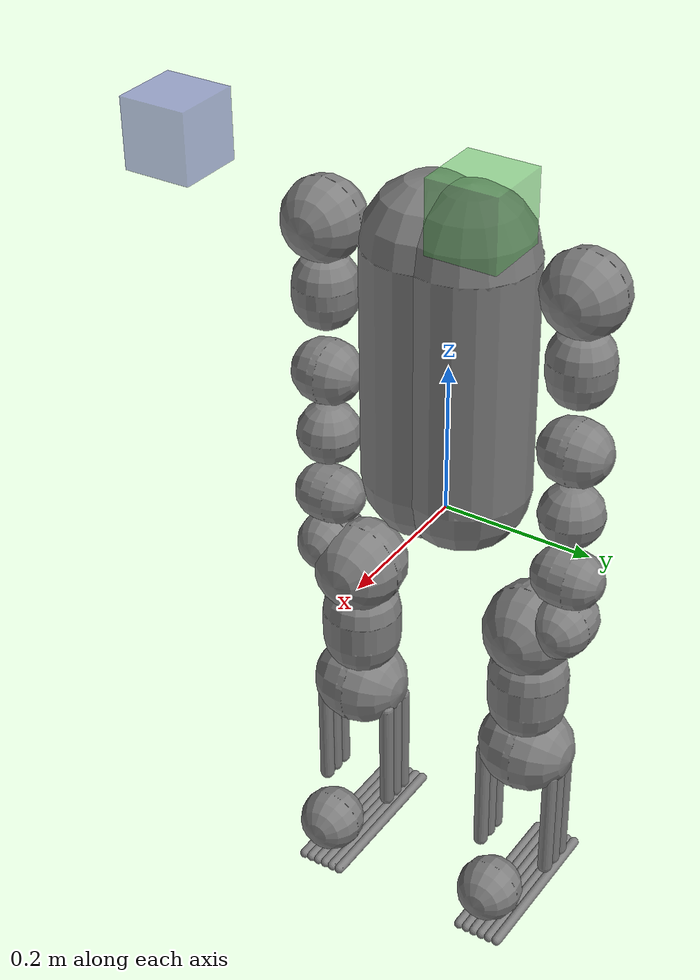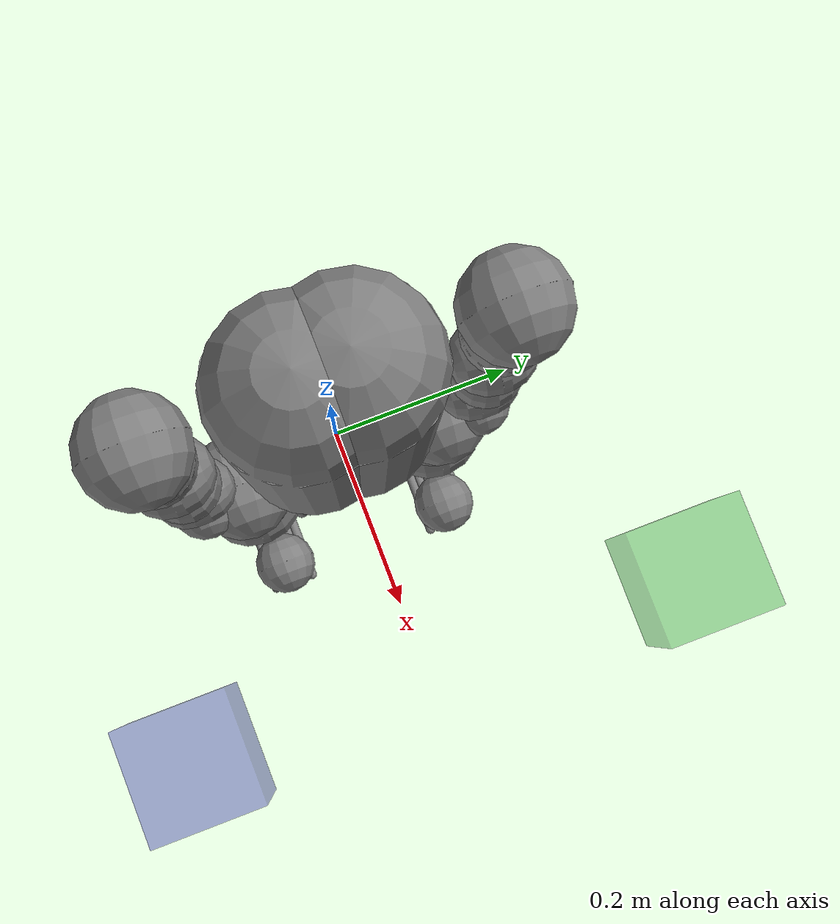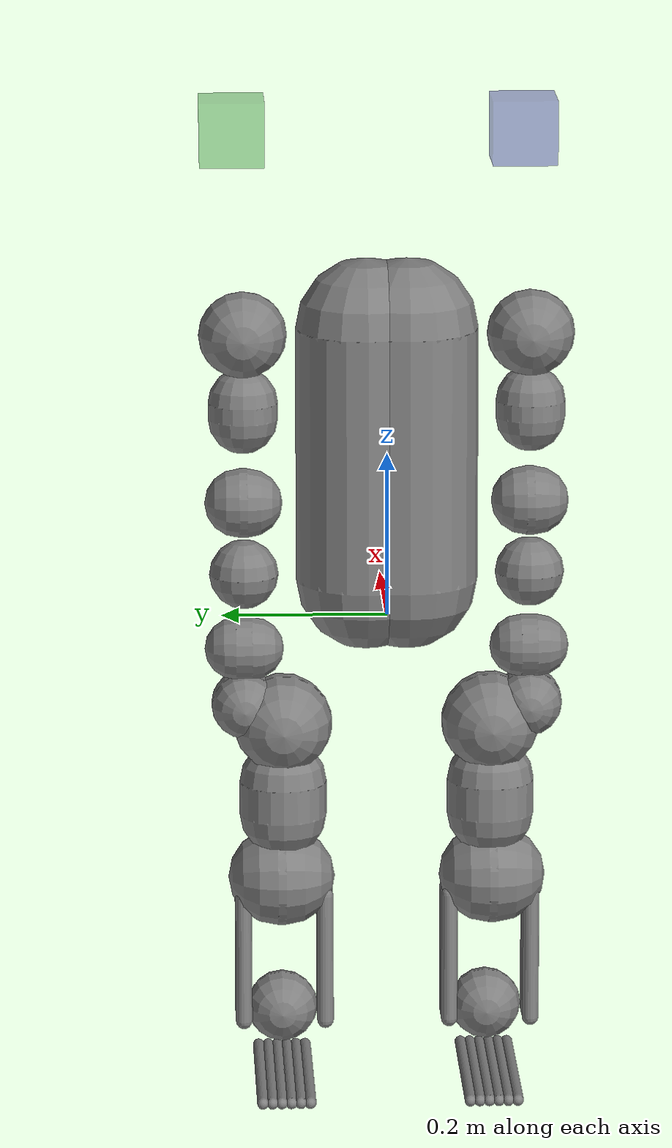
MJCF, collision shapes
<mujoco model="duke_v2 mink scene">
  <include file="humanoid_v21.xml"/>

  <statistic center="0.2 0 0.8" extent="1.2" meansize="0.08"/>

  <visual>
    <headlight diffuse="0.6 0.6 0.6" ambient="0.1 0.1 0.1" specular="0 0 0"/>
    <global azimuth="160" elevation="-20"/>
  </visual>

  <asset>
    <texture name="grid" type="2d" builtin="checker" rgb1=".2 .3 .4" rgb2=".1 0.15 0.2"
      width="512" height="512" mark="cross" markrgb=".8 .8 .8"/>
    <material name="grid" texture="grid" texrepeat="1 1" texuniform="true"/>
  </asset>

  <worldbody>
    <light pos="0 0 4" directional="true"/>

    <!-- Left EE target: green box. Double-click to select, Ctrl+Right-drag to translate -->
    <body name="left_target" pos="0.25 0.18 0.55" mocap="true">
      <geom type="box" size=".04 .04 .04" contype="0" conaffinity="0" rgba=".3 .7 .3 .5"/>
    </body>

    <!-- Right EE target: blue box -->
    <body name="right_target" pos="0.25 -0.18 0.55" mocap="true">
      <geom type="box" size=".04 .04 .04" contype="0" conaffinity="0" rgba=".3 .3 .7 .5"/>
    </body>
  </worldbody>
</mujoco>

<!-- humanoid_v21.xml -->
<mujoco model="humanoid_v2">
  <compiler angle="radian" meshdir="meshes" autolimits="true"/>
  <default>
    <default class="humanoid_v2">
      <default class="visual">
        <geom group="2" type="mesh" contype="0" conaffinity="0" material="silver"/>
      </default>
      <default class="collision">
        <geom group="3" contype="1" conaffinity="1"/>
      </default>
    </default>
  </default>
  <asset>
    <material name="silver" rgba="0.75 0.75 0.75 1"/>
    <material name="blue" rgba="0 0 0.8 1"/>
    <material name="black" rgba="0 0 0 1"/>
    <material name="purple" rgba="0.8 0 0.8 1"/>
    <material name="white" rgba="1 1 1 1"/>
    <material name="light_grey" rgba="0.19 0.2 0.22 1" specular="0.75" shininess="0.05"/>
    <material name="dark_grey" rgba="0.11 0.115 0.125 1" specular="0.35" shininess="0.05"/>
    <mesh name="base_link" file="base_link.stl" scale="0.001 0.001 0.001"/>
    <mesh name="waist_high_res" file="waist.obj" scale="0.001 0.001 0.001"/>
    <mesh name="hip_2_high_res_mirrorx" file="hip_2.obj" scale="-0.001 0.001 0.001"/>
    <mesh name="hip_2_high_res" file="hip_2.obj" scale="0.001 0.001 0.001"/>
    <mesh name="hip_3_high_res_mirrorx" file="hip_3.obj" scale="-0.001 0.001 0.001"/>
    <mesh name="hip_3_high_res" file="hip_3.obj" scale="0.001 0.001 0.001"/>
    <mesh name="knee_high_res_mirrorx" file="knee.obj" scale="-0.001 0.001 0.001"/>
    <mesh name="knee_high_res" file="knee.obj" scale="0.001 0.001 0.001"/>
    <mesh name="shank_high_res_mirrorx" file="shank.obj" scale="-0.001 0.001 0.001"/>
    <mesh name="shank_high_res" file="shank.obj" scale="0.001 0.001 0.001"/>
    <mesh name="ankle_1_high_res_mirrorx" file="ankle_1.obj" scale="-0.001 0.001 0.001"/>
    <mesh name="ankle_1_high_res" file="ankle_1.obj" scale="0.001 0.001 0.001"/>
    <mesh name="ankle_2_high_res_mirrorx" file="ankle_2.obj" scale="-0.001 0.001 0.001"/>
    <mesh name="ankle_2_high_res" file="ankle_2.obj" scale="0.001 0.001 0.001"/>
    <mesh name="shoulder_2_high_res_mirrorx" file="shoulder_2.obj" scale="-0.001 0.001 0.001"/>
    <mesh name="shoulder_2_high_res" file="shoulder_2.obj" scale="0.001 0.001 0.001"/>
    <mesh name="shoulder_3_high_res_mirrorx" file="shoulder_3.obj" scale="-0.001 0.001 0.001"/>
    <mesh name="shoulder_3_high_res" file="shoulder_3.obj" scale="0.001 0.001 0.001"/>
    <mesh name="elbow_high_res_mirrorx" file="elbow.obj" scale="-0.001 0.001 0.001"/>
    <mesh name="elbow_high_res" file="elbow.obj" scale="0.001 0.001 0.001"/>
    <mesh name="wrist_1_high_res_mirrorx" file="wrist_1.obj" scale="-0.001 0.001 0.001"/>
    <mesh name="wrist_1_high_res" file="wrist_1.obj" scale="0.001 0.001 0.001"/>
    <mesh name="wrist_2_high_res_mirrorx" file="wrist_2.obj" scale="-0.001 0.001 0.001"/>
    <mesh name="wrist_2_high_res" file="wrist_2.obj" scale="0.001 0.001 0.001"/>
    <mesh name="wrist_3_new_high_res_mirrorx" file="wrist_3_new.obj" scale="-0.001 0.001 0.001"/>
    <mesh name="wrist_3_new_high_res" file="wrist_3_new.obj" scale="0.001 0.001 0.001"/>
    <mesh name="end_effector_attachment_new_high_res_mirrorx" file="end_effector_attachment_new.obj" scale="-0.001 0.001 0.001"/>
    <mesh name="end_effector_attachment_new_high_res" file="end_effector_attachment_new.obj" scale="0.001 0.001 0.001"/>
  </asset>
  <worldbody>
    <body name="base_link" childclass="humanoid_v2">
      <light pos="0 0 2" mode="trackcom"/>
      <camera name="tracking" pos="1.5 -1.5 1" xyaxes="0.707 0.707 0 -0.3 0.3 0.9" mode="trackcom"/>
      <freejoint name="floating_base_joint"/>
      <inertial mass="9.302908449" pos="-0.00741636 4.16161e-05 0.186843" diaginertia="0.0347794 0.173949 0.189052" quat="8.35609e-05 0.718034 -0.000326247 0.696008"/>
      <geom name="base_link_visual" type="mesh" mesh="base_link" pos="0 0 0" class="visual" material="dark_grey"/>
      <geom type="capsule" size="0.08485378049544526 0.15514621950455473" name="base_link_collision0" pos="0 -0.0249986 0.2" class="collision"/>
      <geom type="capsule" size="0.08485378049544526 0.15514621950455473" name="base_link_collision1" pos="0 0.0249986 0.2" class="collision"/>
      <body name="waist" pos="0 0 -0.0361">
        <inertial mass="2.319367147" pos="-0.00238207 4.63475e-07 -0.0704721" diaginertia="0.00376271 0.00529885 0.00558094" quat="-0.43413 0.558388 0.558062 -0.433936"/>
        <joint name="waist_joint" type="hinge" pos="0 0 0" axis="0 0 1" range="-1.5707963267948966 1.5707963267948966"/>
        <geom name="waist_visual" type="mesh" mesh="waist_high_res" pos="0 0 0" class="visual" material="dark_grey"/>
        <body name="hip_2_L" pos="0 0.059946 -0.081628" quat="0.793353 0.608761 0 0">
          <inertial mass="1.252698981" pos="0.000349087 2.18694e-05 -0.061261" diaginertia="0.00138225 0.00185815 0.00192888" quat="0.536837 0.540342 0.45664 -0.459691"/>
          <joint name="left_hip_1_joint" type="hinge" pos="0 0 0" axis="0 0 1" range="-1.8325957145940461 1.8325957145940461"/>
          <geom name="hip_2_L_visual" type="mesh" mesh="hip_2_high_res_mirrorx" pos="0 0 0" quat="6.12323e-17 0 0 1" class="visual" material="light_grey"/>
          <geom name="hip_2_L_collision" type="capsule" size="0.06 0.005" pos="0.0006 0 -0.069" quat="0.092296 0.701057 -0.092296 -0.701057" class="collision"/>
          <body name="hip_3_L" pos="0.0287 0 -0.0691" quat="0.701057 0.092296 -0.701057 -0.092296">
            <inertial mass="1.297335685" pos="-2.07731e-05 -0.0770614 0.0307231" diaginertia="0.00175068 0.00229469 0.00271565" quat="0.51929 -0.479853 -0.519071 0.480255"/>
            <joint name="left_hip_2_joint" type="hinge" pos="0 0 0" axis="0 0 1" range="-1.8325957145940461 0.5235987755982988"/>
            <geom name="hip_3_L_visual" type="mesh" mesh="hip_3_high_res_mirrorx" pos="0 0 0" class="visual" material="dark_grey"/>
            <geom name="hip_3_L_collision" type="capsule" size="0.053 0.021" pos="0 -0.0945 0.0287" quat="0.707107 -0.707107 -0 0" class="collision"/>
            <body name="knee_L" pos="0 -0.1156 0.0287" quat="0.707107 -0.707107 0 0">
              <inertial mass="1.842141671" pos="0.0014826 -8.41853e-05 -0.0736603" diaginertia="0.00190901 0.00264702 0.00341994" quat="-0.00022525 0.722024 0.00337258 -0.69186"/>
              <joint name="left_hip_3_joint" type="hinge" pos="0 0 0" axis="0 0 1" range="-1.5707963267948966 1.5707963267948966"/>
              <geom name="knee_L_visual" type="mesh" mesh="knee_high_res_mirrorx" pos="0 0 0" quat="6.12323e-17 0 0 1" class="visual" material="light_grey"/>
              <geom name="knee_L_collision" type="capsule" size="0.06 0.005" pos="-0.00225 0 -0.0795" quat="0.5 -0.5 -0.5 0.5" class="collision"/>
              <body name="shank_L" pos="0.0255 0 -0.0795" quat="0.5 -0.5 -0.5 0.5">
                <inertial mass="0.753288544" pos="-8.59033e-07 0.0943751 0.0229906" diaginertia="0.00154563 0.00486086 0.00599117" quat="0.498696 0.501311 -0.498686 -0.5013"/>
                <joint name="left_knee_joint" type="hinge" pos="0 0 0" axis="0 0 1" range="-2.2689280275926285 2.2689280275926285"/>
                <geom name="shank_L_visual" type="mesh" mesh="shank_high_res_mirrorx" pos="0 0 0" class="visual" material="dark_grey"/>
                <geom type="capsule" size="0.01 0.08" name="shank_L_collision0" pos="-0.02 0.1 -0.025" quat="0.707107 -0.707107 -0 0" class="collision"/>
                <geom type="capsule" size="0.01 0.08" name="shank_L_collision1" pos="0 0.1 -0.025" quat="0.707107 -0.707107 -0 0" class="collision"/>
                <geom type="capsule" size="0.01 0.08" name="shank_L_collision2" pos="0.02 0.1 -0.025" quat="0.707107 -0.707107 -0 0" class="collision"/>
                <geom type="capsule" size="0.01 0.08" name="shank_L_collision3" pos="-0.02 0.1 0.075" quat="0.707107 -0.707107 -0 0" class="collision"/>
                <geom type="capsule" size="0.01 0.08" name="shank_L_collision4" pos="0 0.1 0.075" quat="0.707107 -0.707107 -0 0" class="collision"/>
                <geom type="capsule" size="0.01 0.08" name="shank_L_collision5" pos="0.02 0.1 0.075" quat="0.707107 -0.707107 -0 0" class="collision"/>
                <body name="ankle_1_L" pos="0 0.195 0" quat="6.12323e-17 0 1 0">
                  <inertial mass="1.801864964" pos="-0.0305888 1.59279e-05 -0.025774" diaginertia="0.00144542 0.00421361 0.00443807" quat="0.00120435 0.999999 0.000123663 -0.000389805"/>
                  <joint name="left_ankle_1_joint" type="hinge" pos="0 0 0" axis="0 0 1" range="-0.8726646259971648 0.8726646259971648"/>
                  <geom name="ankle_1_L_visual" type="mesh" mesh="ankle_1_high_res_mirrorx" pos="0 0 0" quat="6.12323e-17 0 0 1" class="visual" material="light_grey"/>
                  <geom name="ankle_1_L_collision" type="capsule" size="0.044 0.0005" pos="-0.08275 0 -0.0255" quat="4.32978e-17 -0.707107 -4.32978e-17 -0.707107" class="collision"/>
                  <body name="foot_L" pos="-0.1 0 -0.0255" quat="0.5 -0.5 0.5 -0.5">
                    <inertial mass="0.506070711" pos="-0.0374774 -8.96073e-10 0.0957522" diaginertia="0.00061045 0.00341987 0.00361595" quat="0.489663 0.489663 -0.510128 0.510128"/>
                    <joint name="left_ankle_2_joint" type="hinge" pos="0 0 0" axis="0 0 1" range="-1.0471975511965976 1.0471975511965976"/>
                    <geom name="foot_L_visual" type="mesh" mesh="ankle_2_high_res_mirrorx" pos="0 0 0" quat="6.12323e-17 0 0 1" class="visual" material="dark_grey"/>
                    <geom type="capsule" size="0.007 0.11049999999999999" name="foot_L_collision0" pos="-0.061 0.029 0.1" quat="6.12323e-17 0 0 1" class="collision"/>
                    <geom type="capsule" size="0.007 0.11049999999999999" name="foot_L_collision1" pos="-0.061 0.0174 0.1" quat="6.12323e-17 0 0 1" class="collision"/>
                    <geom type="capsule" size="0.007 0.11049999999999999" name="foot_L_collision2" pos="-0.061 0.0058 0.1" quat="6.12323e-17 0 0 1" class="collision"/>
                    <geom type="capsule" size="0.007 0.11049999999999999" name="foot_L_collision3" pos="-0.061 -0.0058 0.1" quat="6.12323e-17 0 0 1" class="collision"/>
                    <geom type="capsule" size="0.007 0.11049999999999999" name="foot_L_collision4" pos="-0.061 -0.0174 0.1" quat="6.12323e-17 0 0 1" class="collision"/>
                    <geom type="capsule" size="0.007 0.11049999999999999" name="foot_L_collision5" pos="-0.061 -0.029 0.1" quat="6.12323e-17 0 0 1" class="collision"/>
                    <site name="foot_L_contact" pos="-0.061 -5.78241e-19 0.1"/>
                  </body>
                </body>
              </body>
            </body>
          </body>
        </body>
        <body name="hip_2_R" pos="0 -0.059946 -0.081628" quat="0.793353 -0.608761 0 0">
          <inertial mass="1.252698981" pos="0.000349087 -2.18694e-05 -0.061261" diaginertia="0.00138225 0.00185815 0.00192888" quat="-0.459691 0.45664 0.540342 0.536837"/>
          <joint name="right_hip_1_joint" type="hinge" pos="0 0 0" axis="0 0 1" range="-1.8325957145940461 1.8325957145940461"/>
          <geom name="hip_2_R_visual" type="mesh" mesh="hip_2_high_res" pos="0 0 0" class="visual" material="light_grey"/>
          <geom name="hip_2_R_collision" type="capsule" size="0.06 0.005" pos="0.0006 0 -0.069" quat="0.701057 0.092296 -0.701057 -0.092296" class="collision"/>
          <body name="hip_3_R" pos="0.0287 0 -0.0691" quat="0.092296 0.701057 -0.092296 -0.701057">
            <inertial mass="1.297335685" pos="2.07731e-05 -0.0770614 0.0307231" diaginertia="0.00175068 0.00229469 0.00271565" quat="0.519071 -0.480255 -0.51929 0.479853"/>
            <joint name="right_hip_2_joint" type="hinge" pos="0 0 0" axis="0 0 1" range="-0.5235987755982988 1.8325957145940461"/>
            <geom name="hip_3_R_visual" type="mesh" mesh="hip_3_high_res" pos="0 0 0" class="visual" material="dark_grey"/>
            <geom name="hip_3_R_collision" type="capsule" size="0.053 0.021" pos="0 -0.0945 0.0287" quat="0.707107 -0.707107 0 0" class="collision"/>
            <body name="knee_R" pos="0 -0.1156 0.0287" quat="4.32978e-17 -4.32978e-17 0.707107 0.707107">
              <inertial mass="1.842141671" pos="0.0014826 8.41853e-05 -0.0736603" diaginertia="0.00190901 0.00264702 0.00341994" quat="0.69186 -0.00337258 -0.722024 0.00022525"/>
              <joint name="right_hip_3_joint" type="hinge" pos="0 0 0" axis="0 0 1" range="-1.5707963267948966 1.5707963267948966"/>
              <geom name="knee_R_visual" type="mesh" mesh="knee_high_res" pos="0 0 0" class="visual" material="light_grey"/>
              <geom name="knee_R_collision" type="capsule" size="0.06 0.005" pos="-0.00225 0 -0.0795" quat="0.5 -0.5 -0.5 0.5" class="collision"/>
              <body name="shank_R" pos="0.0255 0 -0.0795" quat="0.5 -0.5 -0.5 0.5">
                <inertial mass="0.753288544" pos="8.59033e-07 0.0943751 0.0229906" diaginertia="0.00154563 0.00486086 0.00599117" quat="-0.498686 -0.5013 0.498696 0.501311"/>
                <joint name="right_knee_joint" type="hinge" pos="0 0 0" axis="0 0 1" range="-2.2689280275926285 2.2689280275926285"/>
                <geom name="shank_R_visual" type="mesh" mesh="shank_high_res" pos="0 0 0" class="visual" material="dark_grey"/>
                <geom type="capsule" size="0.01 0.08" name="shank_R_collision0" pos="-0.02 0.1 -0.025" quat="0.707107 -0.707107 -0 0" class="collision"/>
                <geom type="capsule" size="0.01 0.08" name="shank_R_collision1" pos="0 0.1 -0.025" quat="0.707107 -0.707107 -0 0" class="collision"/>
                <geom type="capsule" size="0.01 0.08" name="shank_R_collision2" pos="0.02 0.1 -0.025" quat="0.707107 -0.707107 -0 0" class="collision"/>
                <geom type="capsule" size="0.01 0.08" name="shank_R_collision3" pos="-0.02 0.1 0.075" quat="0.707107 -0.707107 -0 0" class="collision"/>
                <geom type="capsule" size="0.01 0.08" name="shank_R_collision4" pos="0 0.1 0.075" quat="0.707107 -0.707107 -0 0" class="collision"/>
                <geom type="capsule" size="0.01 0.08" name="shank_R_collision5" pos="0.02 0.1 0.075" quat="0.707107 -0.707107 -0 0" class="collision"/>
                <body name="ankle_1_R" pos="0 0.195 0" quat="3.7494e-33 -1 6.12323e-17 6.12323e-17">
                  <inertial mass="1.801864964" pos="-0.0305888 -1.59279e-05 -0.025774" diaginertia="0.00144542 0.00421361 0.00443807" quat="0.999999 0.00120435 0.000389805 -0.000123663"/>
                  <joint name="right_ankle_1_joint" type="hinge" pos="0 0 0" axis="0 0 1" range="-0.8726646259971648 0.8726646259971648"/>
                  <geom name="ankle_1_R_visual" type="mesh" mesh="ankle_1_high_res" pos="0 0 0" class="visual" material="light_grey"/>
                  <geom name="ankle_1_R_collision" type="capsule" size="0.044 0.0005" pos="-0.08275 0 -0.0255" quat="0.707107 0 0.707107 0" class="collision"/>
                  <body name="foot_R" pos="-0.1 0 -0.0255" quat="0.5 0.5 0.5 0.5">
                    <inertial mass="0.506070711" pos="-0.0374774 8.96073e-10 0.0957522" diaginertia="0.00061045 0.00341987 0.00361595" quat="0.489663 0.489663 -0.510128 0.510128"/>
                    <joint name="right_ankle_2_joint" type="hinge" pos="0 0 0" axis="0 0 1" range="-1.0471975511965976 1.0471975511965976"/>
                    <geom name="foot_R_visual" type="mesh" mesh="ankle_2_high_res" pos="0 0 0" class="visual" material="dark_grey"/>
                    <geom type="capsule" size="0.007 0.11049999999999999" name="foot_R_collision0" pos="-0.061 -0.029 0.1" class="collision"/>
                    <geom type="capsule" size="0.007 0.11049999999999999" name="foot_R_collision1" pos="-0.061 -0.0174 0.1" class="collision"/>
                    <geom type="capsule" size="0.007 0.11049999999999999" name="foot_R_collision2" pos="-0.061 -0.0058 0.1" class="collision"/>
                    <geom type="capsule" size="0.007 0.11049999999999999" name="foot_R_collision3" pos="-0.061 0.0058 0.1" class="collision"/>
                    <geom type="capsule" size="0.007 0.11049999999999999" name="foot_R_collision4" pos="-0.061 0.0174 0.1" class="collision"/>
                    <geom type="capsule" size="0.007 0.11049999999999999" name="foot_R_collision5" pos="-0.061 0.029 0.1" class="collision"/>
                    <site name="foot_R_contact" pos="-0.061 5.78241e-19 0.1"/>
                  </body>
                </body>
              </body>
            </body>
          </body>
        </body>
      </body>
      <body name="shoulder_2_L" pos="0 0.083 0.3475" quat="0.707107 0.707107 0 0">
        <inertial mass="0.903096525" pos="0.000787068 5.71455e-07 -0.0730081" diaginertia="0.000555624 0.00146696 0.00153275" quat="-4.15531e-05 0.677536 2.98517e-05 0.73549"/>
        <joint name="left_shoulder_1_joint" type="hinge" pos="0 0 0" axis="0 0 1" range="-3.141592653589793 3.141592653589793"/>
        <geom name="shoulder_2_L_visual" type="mesh" mesh="shoulder_2_high_res_mirrorx" pos="0 0 0" quat="6.12323e-17 0 0 1" class="visual" material="dark_grey"/>
        <geom name="shoulder_2_L_collision" type="capsule" size="0.053 5e-05" pos="0 0 -0.09" quat="4.32978e-17 -0.707107 -4.32978e-17 -0.707107" class="collision"/>
        <body name="shoulder_3_L" pos="0.02475 0 -0.09" quat="0.707107 0 -0.707107 0">
          <inertial mass="0.716054399" pos="-0.000428244 -0.0657202 0.0269038" diaginertia="0.000675965 0.00100372 0.00122933" quat="-0.493187 0.508665 0.504716 -0.493242"/>
          <joint name="left_shoulder_2_joint" type="hinge" pos="0 0 0" axis="0 0 1" range="-3.141592653589793 0.5235987755982988"/>
          <geom name="shoulder_3_L_visual" type="mesh" mesh="shoulder_3_high_res_mirrorx" pos="0 0 0" class="visual" material="light_grey"/>
          <geom name="shoulder_3_L_collision" type="capsule" size="0.042 0.01" pos="0 -0.093 0.02475" quat="0.707107 0.707107 0 0" class="collision"/>
          <body name="elbow_L" pos="0 -0.096 0.02475" quat="4.32978e-17 -4.32978e-17 0.707107 0.707107">
            <inertial mass="0.649565012" pos="0.00165016 -0.0024442 -0.0943709" diaginertia="0.000376826 0.000924704 0.00107426" quat="0.734796 0.086108 0.672778 -0.00554098"/>
            <joint name="left_shoulder_3_joint" type="hinge" pos="0 0 0" axis="0 0 1" range="-3.141592653589793 3.141592653589793"/>
            <geom name="elbow_L_visual" type="mesh" mesh="elbow_high_res_mirrorx" pos="0 0 0" quat="6.12323e-17 0 0 1" class="visual" material="dark_grey"/>
            <geom name="elbow_L_collision" type="capsule" size="0.042 0.005" pos="0 0 -0.111" quat="4.32978e-17 -0.707107 -4.32978e-17 -0.707107" class="collision"/>
            <body name="wrist_1_L" pos="0 0 -0.111" quat="0.5 0.5 -0.5 -0.5">
              <inertial mass="0.745373662" pos="0.000186448 -0.0651533 0.00301697" diaginertia="0.000704132 0.00105686 0.00129828" quat="0.458603 0.539817 -0.475968 -0.521282"/>
              <joint name="left_elbow_joint" type="hinge" pos="0 0 0" axis="0 0 1" range="-2.181661564992912 2.181661564992912"/>
              <geom name="wrist_1_L_visual" type="mesh" mesh="wrist_1_high_res_mirrorx" pos="0 0 0" class="visual" material="light_grey"/>
              <geom name="wrist_1_L_collision" type="capsule" size="0.042 5e-05" pos="0 -0.0885 0" quat="0.707107 0.707107 0 0" class="collision"/>
              <body name="wrist_2_L" pos="0 -0.096 0" quat="0.5 -0.5 -0.5 -0.5">
                <inertial mass="0.446371412" pos="-0.00845747 2.17826e-05 -0.0781628" diaginertia="0.000202786 0.000381248 0.000403138" quat="0.475646 0.475072 0.524297 -0.522667"/>
                <joint name="left_wrist_1_joint" type="hinge" pos="0 0 0" axis="0 0 1" range="-3.141592653589793 3.141592653589793"/>
                <geom name="wrist_2_L_visual" type="mesh" mesh="wrist_2_high_res_mirrorx" pos="0 0 0" quat="6.12323e-17 0 0 1" class="visual" material="dark_grey"/>
                <geom name="wrist_2_L_collision" type="capsule" size="0.038 0.01" pos="0 0 -0.0855" quat="4.32978e-17 -0.707107 -4.32978e-17 -0.707107" class="collision"/>
                <body name="wrist_3_L" pos="0 0 -0.0855" quat="6.12323e-17 0 0 1">
                  <inertial mass="0.352354158" pos="-0.00698731 -0.00907562 -0.0474171" diaginertia="0.000125529 0.000440978 0.000444273" quat="0.817224 -0.0872787 0.56821 -0.0408068"/>
                  <joint name="left_wrist_2_joint" type="hinge" pos="0 0 0" axis="-1 0 0" range="-1.6057029118347832 1.6057029118347832"/>
                  <geom name="wrist_3_L_visual" type="mesh" mesh="wrist_3_new_high_res_mirrorx" pos="0 0 0" class="visual" material="light_grey"/>
                  <geom name="wrist_3_L_collision" type="capsule" size="0.04 0.01" pos="0 0 -0.07" quat="0.707107 0.707107 0 0" class="collision"/>
                  <body name="end_effector_L" pos="0 0 -0.064" quat="0.5 0.5 0.5 -0.5">
                    <inertial mass="0.17299" pos="0.01513 2.418e-08 -0.01529" diaginertia="5.85506e-05 0.00014 0.000145109" quat="0.992481 -3.04069e-06 -0.122399 3.74997e-07"/>
                    <joint name="left_wrist_3_joint" type="hinge" pos="0 0 0" axis="0 0 1" range="-1.5707963267948966 1.5707963267948966"/>
                    <geom name="end_effector_L_visual" type="mesh" mesh="end_effector_attachment_new_high_res_mirrorx" pos="0 0 0" quat="6.12323e-17 0 0 1" class="visual" material="dark_grey"/>
                    <site name="end_effector_L_site" pos="0.0325 0 0"/>
                  </body>
                </body>
              </body>
            </body>
          </body>
        </body>
      </body>
      <body name="shoulder_2_R" pos="0 -0.083 0.3475" quat="0.707107 -0.707107 0 0">
        <inertial mass="0.903096525" pos="0.000787068 -5.71455e-07 -0.0730081" diaginertia="0.000555624 0.00146696 0.00153275" quat="0.677536 -4.15531e-05 -0.73549 -2.98517e-05"/>
        <joint name="right_shoulder_1_joint" type="hinge" pos="0 0 0" axis="0 0 1" range="-3.141592653589793 3.141592653589793"/>
        <geom name="shoulder_2_R_visual" type="mesh" mesh="shoulder_2_high_res" pos="0 0 0" class="visual" material="dark_grey"/>
        <geom name="shoulder_2_R_collision" type="capsule" size="0.053 5e-05" pos="0 0 -0.09" quat="0.707107 0 0.707107 0" class="collision"/>
        <body name="shoulder_3_R" pos="0.02475 0 -0.09" quat="4.32978e-17 0.707107 4.32978e-17 -0.707107">
          <inertial mass="0.716054399" pos="0.000428244 -0.0657202 0.0269038" diaginertia="0.000675965 0.00100372 0.00122933" quat="0.504716 -0.493242 -0.493187 0.508665"/>
          <joint name="right_shoulder_2_joint" type="hinge" pos="0 0 0" axis="0 0 1" range="-0.5235987755982988 3.141592653589793"/>
          <geom name="shoulder_3_R_visual" type="mesh" mesh="shoulder_3_high_res" pos="0 0 0" class="visual" material="light_grey"/>
          <geom name="shoulder_3_R_collision" type="capsule" size="0.042 0.01" pos="0 -0.093 0.02475" quat="0.707107 0.707107 0 0" class="collision"/>
          <body name="elbow_R" pos="0 -0.096 0.02475" quat="0.707107 -0.707107 0 0">
            <inertial mass="0.649565012" pos="0.00165016 0.0024442 -0.0943709" diaginertia="0.000376826 0.000924704 0.00107426" quat="0.086108 0.734796 0.00554098 -0.672778"/>
            <joint name="right_shoulder_3_joint" type="hinge" pos="0 0 0" axis="0 0 1" range="-3.141592653589793 3.141592653589793"/>
            <geom name="elbow_R_visual" type="mesh" mesh="elbow_high_res" pos="0 0 0" class="visual" material="dark_grey"/>
            <geom name="elbow_R_collision" type="capsule" size="0.042 0.005" pos="0 0 -0.111" quat="0.707107 0 0.707107 0" class="collision"/>
            <body name="wrist_1_R" pos="0 0 -0.111" quat="0.5 0.5 -0.5 -0.5">
              <inertial mass="0.745373662" pos="-0.000186448 -0.0651533 0.00301697" diaginertia="0.000704132 0.00105686 0.00129828" quat="-0.475968 -0.521282 0.458603 0.539817"/>
              <joint name="right_elbow_joint" type="hinge" pos="0 0 0" axis="0 0 1" range="-2.181661564992912 2.181661564992912"/>
              <geom name="wrist_1_R_visual" type="mesh" mesh="wrist_1_high_res" pos="0 0 0" class="visual" material="light_grey"/>
              <geom name="wrist_1_R_collision" type="capsule" size="0.042 5e-05" pos="0 -0.0885 0" quat="0.707107 0.707107 0 0" class="collision"/>
              <body name="wrist_2_R" pos="0 -0.096 0" quat="0.5 -0.5 -0.5 -0.5">
                <inertial mass="0.446371412" pos="-0.00845747 -2.17826e-05 -0.0781628" diaginertia="0.000202786 0.000381248 0.000403138" quat="0.522667 -0.524297 -0.475072 -0.475646"/>
                <joint name="right_wrist_1_joint" type="hinge" pos="0 0 0" axis="0 0 1" range="-3.141592653589793 3.141592653589793"/>
                <geom name="wrist_2_R_visual" type="mesh" mesh="wrist_2_high_res" pos="0 0 0" class="visual" material="dark_grey"/>
                <geom name="wrist_2_R_collision" type="capsule" size="0.038 0.01" pos="0 0 -0.0855" quat="0.707107 0 0.707107 0" class="collision"/>
                <body name="wrist_3_R" pos="0 0 -0.0855">
                  <inertial mass="0.352354158" pos="0.00698731 -0.00907562 -0.0474171" diaginertia="0.000125529 0.000440978 0.000444273" quat="0.56821 -0.0408068 0.817224 -0.0872787"/>
                  <joint name="right_wrist_2_joint" type="hinge" pos="0 0 0" axis="-1 0 0" range="-1.6057029118347832 1.6057029118347832"/>
                  <geom name="wrist_3_R_visual" type="mesh" mesh="wrist_3_new_high_res" pos="0 0 0" class="visual" material="light_grey"/>
                  <geom name="wrist_3_R_collision" type="capsule" size="0.04 0.01" pos="0 0 -0.07" quat="0.707107 0.707107 0 0" class="collision"/>
                  <body name="end_effector_R" pos="0 0 -0.064" quat="0.5 0.5 0.5 -0.5">
                    <inertial mass="0.17299" pos="0.01513 -2.418e-08 -0.01529" diaginertia="5.85506e-05 0.00014 0.000145109" quat="-3.04069e-06 0.992481 -3.74997e-07 0.122399"/>
                    <joint name="right_wrist_3_joint" type="hinge" pos="0 0 0" axis="0 0 1" range="-1.5707963267948966 1.5707963267948966"/>
                    <geom name="end_effector_R_visual" type="mesh" mesh="end_effector_attachment_new_high_res" pos="0 0 0" class="visual" material="dark_grey"/>
                    <site name="end_effector_R_site" pos="0.0325 0 0"/>
                  </body>
                </body>
              </body>
            </body>
          </body>
        </body>
      </body>
      <site name="imu_site" pos="0 0 0"/>
    </body>
  </worldbody>
  <sensor>
    <gyro name="imu_ang_vel" site="imu_site"/>
    <velocimeter name="imu_lin_vel" site="imu_site"/>
    <accelerometer name="imu_lin_acc" site="imu_site"/>
    <subtreeangmom name="root_angmom" body="base_link"/>
  </sensor>
</mujoco>
